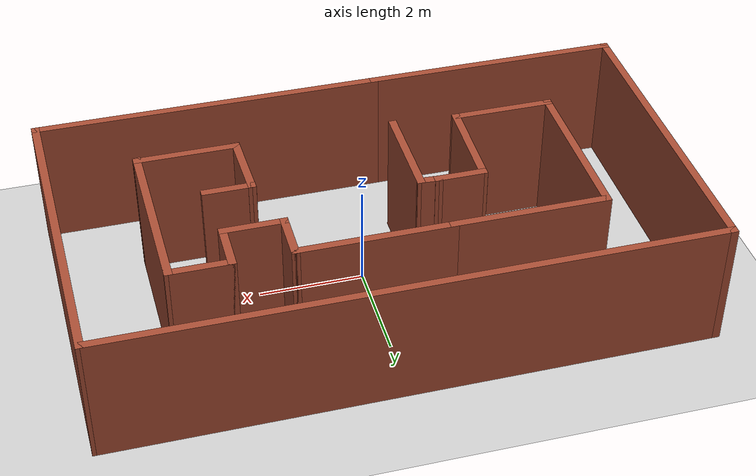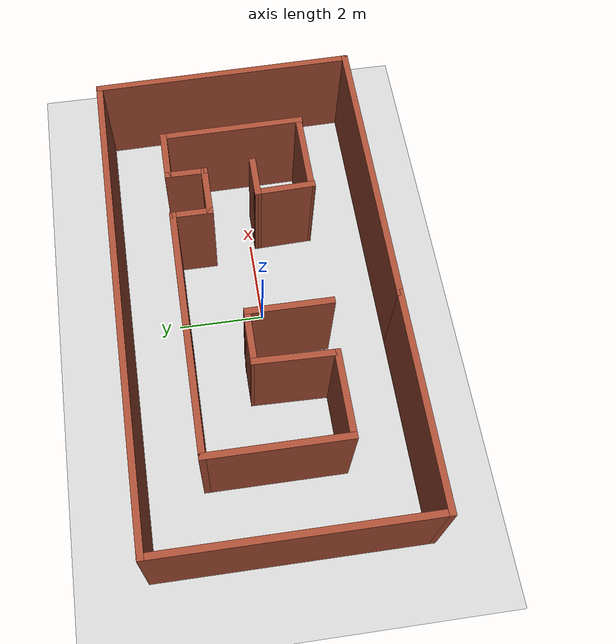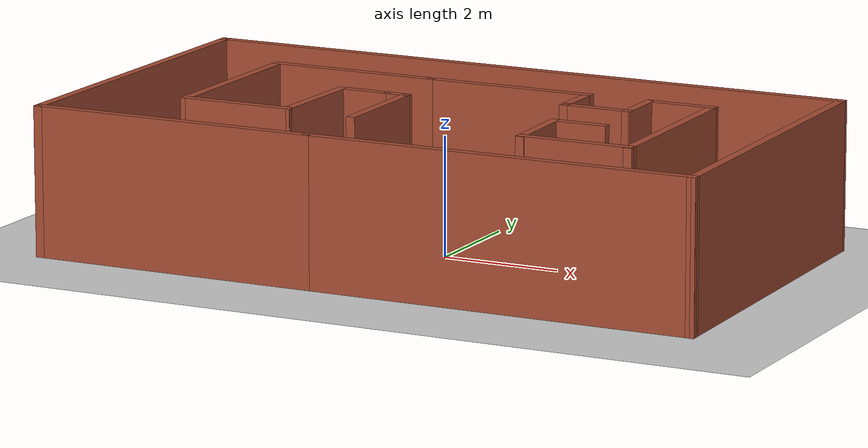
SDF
<sdf version="1.7">
 <world name="default">
  <light name="sun" type="directional">
   <pose>0 0 10 0 -0 0</pose>
   <diffuse>0.8 0.8 0.8 1</diffuse>
   <specular>0.2 0.2 0.2 1</specular>
   <attenuation>
    <range>1000</range>
    <constant>0.9</constant>
    <linear>0.01</linear>
    <quadratic>0.001</quadratic>
   </attenuation>
   <direction>-0.5 0.1 -0.9</direction>
   <spot><inner_angle>0</inner_angle><outer_angle>0</outer_angle><falloff>0</falloff></spot>
  </light>
  <model name="ground_plane">
   <static>1</static>
   <link name="link">
    <collision name="collision">
     <geometry><plane><normal>0 0 1</normal><size>100 100</size></plane></geometry>
     <surface>
      <contact><collide_bitmask>65535</collide_bitmask></contact>
      <friction><ode><mu>100</mu><mu2>50</mu2></ode></friction>
     </surface>
    </collision>
    <visual name="visual">
     <cast_shadows>0</cast_shadows>
     <geometry><plane><normal>0 0 1</normal><size>100 100</size></plane></geometry>
     <material>
      <script><uri>file://media/materials/scripts/gazebo.material</uri><name>Gazebo/Grey</name></script>
     </material>
    </visual>
   </link>
  </model>
  <gravity>0 0 -9.8</gravity>
  <magnetic_field>6e-06 2.3e-05 -4.2e-05</magnetic_field>
  <atmosphere type="adiabatic"/>
  <physics type="ode">
   <max_step_size>0.001</max_step_size>
   <real_time_factor>1</real_time_factor>
   <real_time_update_rate>1000</real_time_update_rate>
  </physics>
  <scene><ambient>0.4 0.4 0.4 1</ambient><background>0.7 0.7 0.7 1</background><shadows>1</shadows></scene>
  <spherical_coordinates>
   <surface_model>EARTH_WGS84</surface_model>
   <latitude_deg>0</latitude_deg>
   <longitude_deg>0</longitude_deg>
   <elevation>0</elevation>
   <heading_deg>0</heading_deg>
  </spherical_coordinates>
  <model name="maze2">
   <pose>-0.108408 0.175205 0 0 -0 0</pose>
   <link name="Wall_10">
    <collision name="Wall_10_Collision">
     <geometry><box><size>1 0.15 2.5</size></box></geometry>
     <pose>0 0 1.25 0 -0 0</pose>
    </collision>
    <visual name="Wall_10_Visual">
     <pose>0 0 1.25 0 -0 0</pose>
     <geometry><box><size>1 0.15 2.5</size></box></geometry>
     <material>
      <script><uri>file://media/materials/scripts/gazebo.material</uri><name>Gazebo/Bricks</name></script>
      <ambient>1 1 1 1</ambient>
     </material>
     <meta><layer>0</layer></meta>
    </visual>
    <pose>2.87439 1.225 0 0 -0 1.5708</pose>
   </link>
   <link name="Wall_11">
    <collision name="Wall_11_Collision">
     <geometry><box><size>1.25 0.15 2.5</size></box></geometry>
     <pose>0 0 1.25 0 -0 0</pose>
    </collision>
    <visual name="Wall_11_Visual">
     <pose>0 0 1.25 0 -0 0</pose>
     <geometry><box><size>1.25 0.15 2.5</size></box></geometry>
     <material>
      <script><uri>file://media/materials/scripts/gazebo.material</uri><name>Gazebo/Bricks</name></script>
      <ambient>1 1 1 1</ambient>
     </material>
     <meta><layer>0</layer></meta>
    </visual>
    <pose>3.42439 1.65 0 0 -0 0</pose>
   </link>
   <link name="Wall_12">
    <collision name="Wall_12_Collision">
     <geometry><box><size>3.42263 0.15 2.5</size></box></geometry>
     <pose>0 0 1.25 0 -0 0</pose>
    </collision>
    <visual name="Wall_12_Visual">
     <pose>0 0 1.25 0 -0 0</pose>
     <geometry><box><size>3.42263 0.15 2.5</size></box></geometry>
     <material>
      <script><uri>file://media/materials/scripts/gazebo.material</uri><name>Gazebo/Bricks</name></script>
      <ambient>1 1 1 1</ambient>
     </material>
     <meta><layer>0</layer></meta>
    </visual>
    <pose>3.9945 0.013807 0 0 -0 -1.5585</pose>
   </link>
   <link name="Wall_13">
    <collision name="Wall_13_Collision">
     <geometry><box><size>2 0.15 2.5</size></box></geometry>
     <pose>0 0 1.25 0 -0 0</pose>
    </collision>
    <visual name="Wall_13_Visual">
     <pose>0 0 1.25 0 -0 0</pose>
     <geometry><box><size>2 0.15 2.5</size></box></geometry>
     <material>
      <script><uri>file://media/materials/scripts/gazebo.material</uri><name>Gazebo/Bricks</name></script>
      <ambient>1 1 1 1</ambient>
     </material>
     <meta><layer>0</layer></meta>
    </visual>
    <pose>3.08962 -1.60227 0 0 -0 3.14159</pose>
   </link>
   <link name="Wall_14">
    <collision name="Wall_14_Collision">
     <geometry><box><size>1.42302 0.15 2.5</size></box></geometry>
     <pose>0 0 1.25 0 -0 0</pose>
    </collision>
    <visual name="Wall_14_Visual">
     <pose>0 0 1.25 0 -0 0</pose>
     <geometry><box><size>1.42302 0.15 2.5</size></box></geometry>
     <material>
      <script><uri>file://media/materials/scripts/gazebo.material</uri><name>Gazebo/Bricks</name></script>
      <ambient>1 1 1 1</ambient>
     </material>
     <meta><layer>0</layer></meta>
    </visual>
    <pose>2.1445 -0.986193 0 0 -0 1.6024</pose>
   </link>
   <link name="Wall_15">
    <collision name="Wall_15_Collision">
     <geometry><box><size>1 0.15 2.5</size></box></geometry>
     <pose>0 0 1.25 0 -0 0</pose>
    </collision>
    <visual name="Wall_15_Visual">
     <pose>0 0 1.25 0 -0 0</pose>
     <geometry><box><size>1 0.15 2.5</size></box></geometry>
     <material>
      <script><uri>file://media/materials/scripts/gazebo.material</uri><name>Gazebo/Bricks</name></script>
      <ambient>1 1 1 1</ambient>
     </material>
     <meta><layer>0</layer></meta>
    </visual>
    <pose>2.54939 -0.35 0 0 -0 0</pose>
   </link>
   <link name="Wall_17">
    <collision name="Wall_17_Collision">
     <geometry><box><size>3 0.15 2.5</size></box></geometry>
     <pose>0 0 1.25 0 -0 0</pose>
    </collision>
    <visual name="Wall_17_Visual">
     <pose>0 0 1.25 0 -0 0</pose>
     <geometry><box><size>3 0.15 2.5</size></box></geometry>
     <material>
      <script><uri>file://media/materials/scripts/gazebo.material</uri><name>Gazebo/Bricks</name></script>
      <ambient>1 1 1 1</ambient>
     </material>
     <meta><layer>0</layer></meta>
    </visual>
    <pose>-2.50061 1.65 0 0 -0 3.14159</pose>
   </link>
   <link name="Wall_18">
    <collision name="Wall_18_Collision">
     <geometry><box><size>3.25 0.15 2.5</size></box></geometry>
     <pose>0 0 1.25 0 -0 0</pose>
    </collision>
    <visual name="Wall_18_Visual">
     <pose>0 0 1.25 0 -0 0</pose>
     <geometry><box><size>3.25 0.15 2.5</size></box></geometry>
     <material>
      <script><uri>file://media/materials/scripts/gazebo.material</uri><name>Gazebo/Bricks</name></script>
      <ambient>1 1 1 1</ambient>
     </material>
     <meta><layer>0</layer></meta>
    </visual>
    <pose>-3.92561 0.1 0 0 -0 -1.5708</pose>
   </link>
   <link name="Wall_19">
    <collision name="Wall_19_Collision">
     <geometry><box><size>2 0.15 2.5</size></box></geometry>
     <pose>0 0 1.25 0 -0 0</pose>
    </collision>
    <visual name="Wall_19_Visual">
     <pose>0 0 1.25 0 -0 0</pose>
     <geometry><box><size>2 0.15 2.5</size></box></geometry>
     <material>
      <script><uri>file://media/materials/scripts/gazebo.material</uri><name>Gazebo/Bricks</name></script>
      <ambient>1 1 1 1</ambient>
     </material>
     <meta><layer>0</layer></meta>
    </visual>
    <pose>-3.00061 -1.45 0 0 -0 0</pose>
   </link>
   <link name="Wall_20">
    <collision name="Wall_20_Collision">
     <geometry><box><size>1.9283 0.15 2.5</size></box></geometry>
     <pose>0 0 1.25 0 -0 0</pose>
    </collision>
    <visual name="Wall_20_Visual">
     <pose>0 0 1.25 0 -0 0</pose>
     <geometry><box><size>1.9283 0.15 2.5</size></box></geometry>
     <material>
      <script><uri>file://media/materials/scripts/gazebo.material</uri><name>Gazebo/Bricks</name></script>
      <ambient>1 1 1 1</ambient>
     </material>
     <meta><layer>0</layer></meta>
    </visual>
    <pose>-2.0555 -0.560909 0 0 -0 1.54818</pose>
   </link>
   <link name="Wall_21">
    <collision name="Wall_21_Collision">
     <geometry><box><size>1 0.15 2.5</size></box></geometry>
     <pose>0 0 1.25 0 -0 0</pose>
    </collision>
    <visual name="Wall_21_Visual">
     <pose>0 0 1.25 0 -0 0</pose>
     <geometry><box><size>1 0.15 2.5</size></box></geometry>
     <material>
      <script><uri>file://media/materials/scripts/gazebo.material</uri><name>Gazebo/Bricks</name></script>
      <ambient>1 1 1 1</ambient>
     </material>
     <meta><layer>0</layer></meta>
    </visual>
    <pose>-1.61038 0.328183 0 0 -0 0</pose>
   </link>
   <link name="Wall_22">
    <collision name="Wall_22_Collision">
     <geometry><box><size>0.479886 0.15 2.5</size></box></geometry>
     <pose>0 0 1.25 0 -0 0</pose>
    </collision>
    <visual name="Wall_22_Visual">
     <pose>0 0 1.25 0 -0 0</pose>
     <geometry><box><size>0.479886 0.15 2.5</size></box></geometry>
     <material>
      <script><uri>file://media/materials/scripts/gazebo.material</uri><name>Gazebo/Bricks</name></script>
      <ambient>1 1 1 1</ambient>
     </material>
     <meta><layer>0</layer></meta>
    </visual>
    <pose>-1.02044 0.318126 0 0 -0 -0.060896</pose>
   </link>
   <link name="Wall_23">
    <collision name="Wall_23_Collision">
     <geometry><box><size>2 0.15 2.5</size></box></geometry>
     <pose>0 0 1.25 0 -0 0</pose>
    </collision>
    <visual name="Wall_23_Visual">
     <pose>0 0 1.25 0 -0 0</pose>
     <geometry><box><size>2 0.15 2.5</size></box></geometry>
     <material>
      <script><uri>file://media/materials/scripts/gazebo.material</uri><name>Gazebo/Bricks</name></script>
      <ambient>1 1 1 1</ambient>
     </material>
     <meta><layer>0</layer></meta>
    </visual>
    <pose>-0.855496 -0.616931 0 0 -0 -1.5708</pose>
   </link>
   <link name="Wall_25">
    <collision name="Wall_25_Collision">
     <geometry><box><size>5 0.15 2.5</size></box></geometry>
     <pose>0 0 1.25 0 -0 0</pose>
    </collision>
    <visual name="Wall_25_Visual">
     <pose>0 0 1.25 0 -0 0</pose>
     <geometry><box><size>5 0.15 2.5</size></box></geometry>
     <material>
      <script><uri>file://media/materials/scripts/gazebo.material</uri><name>Gazebo/Bricks</name></script>
      <ambient>1 1 1 1</ambient>
     </material>
     <meta><layer>0</layer></meta>
    </visual>
    <pose>-3.30061 -3.05 0 0 -0 3.14159</pose>
   </link>
   <link name="Wall_26">
    <collision name="Wall_26_Collision">
     <geometry><box><size>6.25 0.15 2.5</size></box></geometry>
     <pose>0 0 1.25 0 -0 0</pose>
    </collision>
    <visual name="Wall_26_Visual">
     <pose>0 0 1.25 0 -0 0</pose>
     <geometry><box><size>6.25 0.15 2.5</size></box></geometry>
     <material>
      <script><uri>file://media/materials/scripts/gazebo.material</uri><name>Gazebo/Bricks</name></script>
      <ambient>1 1 1 1</ambient>
     </material>
     <meta><layer>0</layer></meta>
    </visual>
    <pose>-5.72561 -0 0 0 -0 1.5708</pose>
   </link>
   <link name="Wall_28">
    <collision name="Wall_28_Collision">
     <geometry><box><size>11.5 0.15 2.5</size></box></geometry>
     <pose>0 0 1.25 0 -0 0</pose>
    </collision>
    <visual name="Wall_28_Visual">
     <pose>0 0 1.25 0 -0 0</pose>
     <geometry><box><size>11.5 0.15 2.5</size></box></geometry>
     <material>
      <script><uri>file://media/materials/scripts/gazebo.material</uri><name>Gazebo/Bricks</name></script>
      <ambient>1 1 1 1</ambient>
     </material>
     <meta><layer>0</layer></meta>
    </visual>
    <pose>-0.050609 3.05 0 0 -0 0</pose>
   </link>
   <link name="Wall_29">
    <collision name="Wall_29_Collision">
     <geometry><box><size>6.25082 0.15 2.5</size></box></geometry>
     <pose>0 0 1.25 0 -0 0</pose>
    </collision>
    <visual name="Wall_29_Visual">
     <pose>0 0 1.25 0 -0 0</pose>
     <geometry><box><size>6.25082 0.15 2.5</size></box></geometry>
     <material>
      <script><uri>file://media/materials/scripts/gazebo.material</uri><name>Gazebo/Bricks</name></script>
      <ambient>1 1 1 1</ambient>
     </material>
     <meta><layer>0</layer></meta>
    </visual>
    <pose>5.67439 -0 0 0 -0 -1.5544</pose>
   </link>
   <link name="Wall_30">
    <collision name="Wall_30_Collision">
     <geometry><box><size>6.75 0.15 2.5</size></box></geometry>
     <pose>0 0 1.25 0 -0 0</pose>
    </collision>
    <visual name="Wall_30_Visual">
     <pose>0 0 1.25 0 -0 0</pose>
     <geometry><box><size>6.75 0.15 2.5</size></box></geometry>
     <material>
      <script><uri>file://media/materials/scripts/gazebo.material</uri><name>Gazebo/Bricks</name></script>
      <ambient>1 1 1 1</ambient>
     </material>
     <meta><layer>0</layer></meta>
    </visual>
    <pose>2.42439 -3.05 0 0 -0 3.14159</pose>
   </link>
   <link name="Wall_7">
    <collision name="Wall_7_Collision">
     <geometry><box><size>3 0.15 2.5</size></box></geometry>
     <pose>0 0 1.25 0 -0 0</pose>
    </collision>
    <visual name="Wall_7_Visual">
     <pose>0 0 1.25 0 -0 0</pose>
     <geometry><box><size>3 0.15 2.5</size></box></geometry>
     <material>
      <script><uri>file://media/materials/scripts/gazebo.material</uri><name>Gazebo/Bricks</name></script>
      <ambient>1 1 1 1</ambient>
     </material>
     <meta><layer>0</layer></meta>
    </visual>
    <pose>0.349391 1.65 0 0 -0 0</pose>
   </link>
   <link name="Wall_8">
    <collision name="Wall_8_Collision">
     <geometry><box><size>1 0.15 2.5</size></box></geometry>
     <pose>0 0 1.25 0 -0 0</pose>
    </collision>
    <visual name="Wall_8_Visual">
     <pose>0 0 1.25 0 -0 0</pose>
     <geometry><box><size>1 0.15 2.5</size></box></geometry>
     <material>
      <script><uri>file://media/materials/scripts/gazebo.material</uri><name>Gazebo/Bricks</name></script>
      <ambient>1 1 1 1</ambient>
     </material>
     <meta><layer>0</layer></meta>
    </visual>
    <pose>1.77439 1.225 0 0 -0 -1.5708</pose>
   </link>
   <link name="Wall_9">
    <collision name="Wall_9_Collision">
     <geometry><box><size>1.25 0.15 2.5</size></box></geometry>
     <pose>0 0 1.25 0 -0 0</pose>
    </collision>
    <visual name="Wall_9_Visual">
     <pose>0 0 1.25 0 -0 0</pose>
     <geometry><box><size>1.25 0.15 2.5</size></box></geometry>
     <material>
      <script><uri>file://media/materials/scripts/gazebo.material</uri><name>Gazebo/Bricks</name></script>
      <ambient>1 1 1 1</ambient>
     </material>
     <meta><layer>0</layer></meta>
    </visual>
    <pose>2.32439 0.8 0 0 -0 0</pose>
   </link>
   <static>1</static>
  </model>
 </world>
</sdf>
